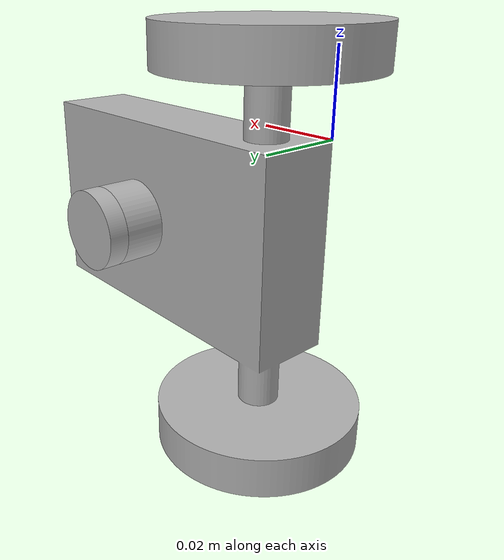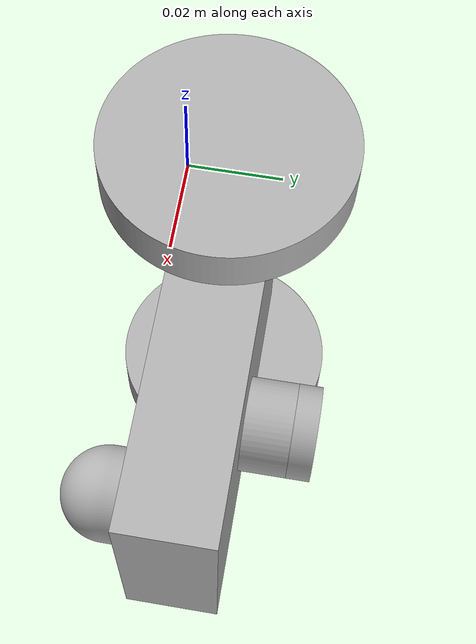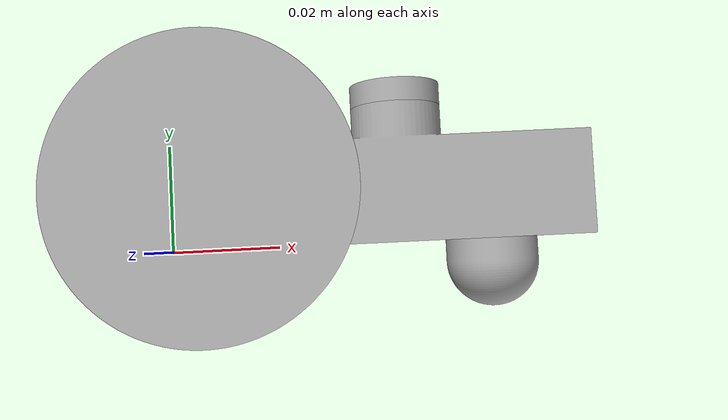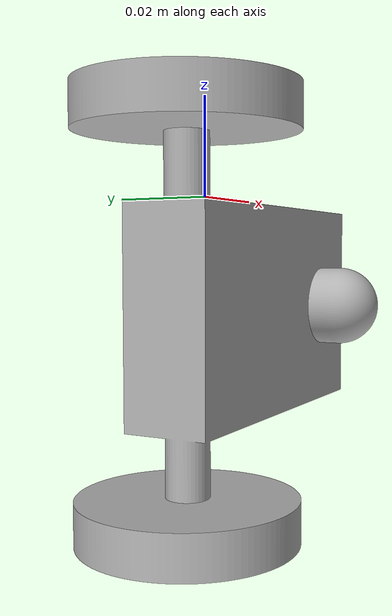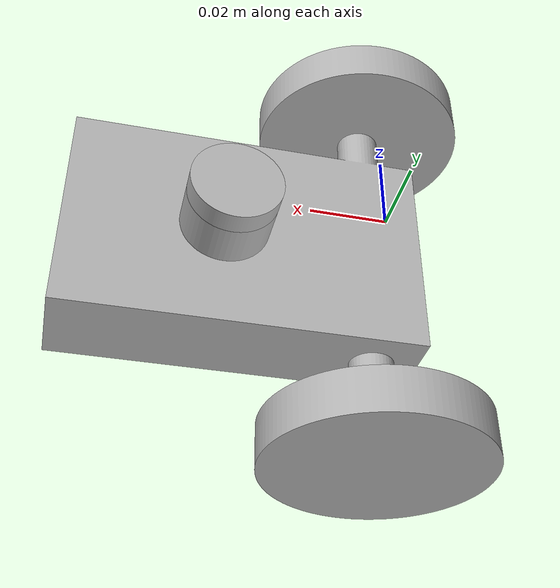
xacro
<?xml version="1.0" ?>
<robot name="WS2" xmlns:xacro="http://www.ros.org/wiki/xacro">

<xacro:include filename="$(find WS2_description)/urdf/materials.xacro" />
<xacro:include filename="$(find WS2_description)/urdf/WS2.ros2control" />
<xacro:include filename="$(find WS2_description)/urdf/WS2.gazebo" />
<link name="base_link">
  <inertial>
    <origin xyz="0.03935696731693397 0.0105511708709443 -0.025" rpy="0 0 0"/>
    <mass value="0.6711576290786943"/>
    <inertia ixx="0.000178" iyy="0.000504" izz="0.000379" ixy="-2e-06" iyz="0.0" ixz="0.0"/>
  </inertial>
  <visual>
    <origin xyz="0 0 0" rpy="0 0 0"/>
    <geometry>
      <mesh filename="file://$(find WS2_description)/meshes/base_link.stl" scale="0.001 0.001 0.001"/>
    </geometry>
    <material name="silver"/>
  </visual>
  <collision>
    <origin xyz="0 0 0" rpy="0 0 0"/>
    <geometry>
      <mesh filename="file://$(find WS2_description)/meshes/base_link.stl" scale="0.001 0.001 0.001"/>
    </geometry>
  </collision>
</link>

<link name="rueda1_1">
  <inertial>
    <origin xyz="-5.204170427930421e-18 -5.204170427930421e-18 0.0049999999999999975" rpy="0 0 0"/>
    <mass value="0.1541343895667492"/>
    <inertia ixx="2.5e-05" iyy="2.5e-05" izz="4.8e-05" ixy="-0.0" iyz="0.0" ixz="0.0"/>
  </inertial>
  <visual>
    <origin xyz="-0.01 -0.01 -0.015" rpy="0 0 0"/>
    <geometry>
      <mesh filename="file://$(find WS2_description)/meshes/rueda1_1.stl" scale="0.001 0.001 0.001"/>
    </geometry>
    <material name="silver"/>
  </visual>
  <collision>
    <origin xyz="-0.01 -0.01 -0.015" rpy="0 0 0"/>
    <geometry>
      <mesh filename="file://$(find WS2_description)/meshes/rueda1_1.stl" scale="0.001 0.001 0.001"/>
    </geometry>
  </collision>
</link>

<link name="rueda2_1">
  <inertial>
    <origin xyz="-5.204170427930421e-18 -5.204170427930421e-18 -0.0049999999999999906" rpy="0 0 0"/>
    <mass value="0.1541343895667492"/>
    <inertia ixx="2.5e-05" iyy="2.5e-05" izz="4.8e-05" ixy="-0.0" iyz="0.0" ixz="0.0"/>
  </inertial>
  <visual>
    <origin xyz="-0.01 -0.01 0.065" rpy="0 0 0"/>
    <geometry>
      <mesh filename="file://$(find WS2_description)/meshes/rueda2_1.stl" scale="0.001 0.001 0.001"/>
    </geometry>
    <material name="silver"/>
  </visual>
  <collision>
    <origin xyz="-0.01 -0.01 0.065" rpy="0 0 0"/>
    <geometry>
      <mesh filename="file://$(find WS2_description)/meshes/rueda2_1.stl" scale="0.001 0.001 0.001"/>
    </geometry>
  </collision>
</link>

<link name="castor_1">
  <inertial>
    <origin xyz="-0.015 -0.006071428571428569 0.0" rpy="0 0 0"/>
    <mass value="0.028771752719126516"/>
    <inertia ixx="1e-06" iyy="1e-06" izz="1e-06" ixy="0.0" iyz="0.0" ixz="-0.0"/>
  </inertial>
  <visual>
    <origin xyz="-0.08 -0.0 0.025" rpy="0 0 0"/>
    <geometry>
      <mesh filename="file://$(find WS2_description)/meshes/castor_1.stl" scale="0.001 0.001 0.001"/>
    </geometry>
    <material name="silver"/>
  </visual>
  <collision>
    <origin xyz="-0.08 -0.0 0.025" rpy="0 0 0"/>
    <geometry>
      <mesh filename="file://$(find WS2_description)/meshes/castor_1.stl" scale="0.001 0.001 0.001"/>
    </geometry>
  </collision>
</link>

<link name="Lidar_1">
  <inertial>
    <origin xyz="-6.938893903907228e-18 0.0025000000000000022 0.0" rpy="0 0 0"/>
    <mass value="0.012330751165339937"/>
    <inertia ixx="0.0" iyy="1e-06" izz="0.0" ixy="0.0" iyz="0.0" ixz="0.0"/>
  </inertial>
  <visual>
    <origin xyz="-0.045 -0.03 0.025" rpy="0 0 0"/>
    <geometry>
      <mesh filename="file://$(find WS2_description)/meshes/Lidar_1.stl" scale="0.001 0.001 0.001"/>
    </geometry>
    <material name="silver"/>
  </visual>
  <collision>
    <origin xyz="-0.045 -0.03 0.025" rpy="0 0 0"/>
    <geometry>
      <mesh filename="file://$(find WS2_description)/meshes/Lidar_1.stl" scale="0.001 0.001 0.001"/>
    </geometry>
  </collision>
</link>

<joint name="Revolución 1" type="continuous">
  <origin xyz="0.01 0.01 0.015" rpy="0 0 0"/>
  <parent link="base_link"/>
  <child link="rueda1_1"/>
  <axis xyz="0.0 0.0 1.0"/>
</joint>

<joint name="Revolución 2" type="continuous">
  <origin xyz="0.01 0.01 -0.065" rpy="0 0 0"/>
  <parent link="base_link"/>
  <child link="rueda2_1"/>
  <axis xyz="0.0 0.0 1.0"/>
</joint>

<joint name="Revolución 3" type="continuous">
  <origin xyz="0.08 0.0 -0.025" rpy="0 0 0"/>
  <parent link="base_link"/>
  <child link="castor_1"/>
  <axis xyz="0.0 -1.0 0.0"/>
</joint>

<joint name="Revolución 4" type="continuous">
  <origin xyz="0.045 0.03 -0.025" rpy="0 0 0"/>
  <parent link="base_link"/>
  <child link="Lidar_1"/>
  <axis xyz="0.0 1.0 0.0"/>
</joint>

</robot>

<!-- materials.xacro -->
<robot name="WS2" xmlns:xacro="http://www.ros.org/wiki/xacro" >

<material name="silver">
  <color rgba="0.700 0.700 0.700 1.000"/>
</material>

</robot>

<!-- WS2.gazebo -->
<robot name="WS2" xmlns:xacro="http://www.ros.org/wiki/xacro" >

<xacro:property name="body_color" value="Gazebo/Silver" />

<gazebo reference="base_link">
  <material>${body_color}</material>
  <mu1>0.2</mu1>
  <mu2>0.2</mu2>
  <self_collide>true</self_collide>
  <gravity>true</gravity>
</gazebo>

<gazebo reference="rueda1_1">
  <material>${body_color}</material>
  <mu1>0.2</mu1>
  <mu2>0.2</mu2>
  <self_collide>true</self_collide>
</gazebo>

<gazebo reference="rueda2_1">
  <material>${body_color}</material>
  <mu1>0.2</mu1>
  <mu2>0.2</mu2>
  <self_collide>true</self_collide>
</gazebo>

<gazebo reference="castor_1">
  <material>${body_color}</material>
  <mu1>0.2</mu1>
  <mu2>0.2</mu2>
  <self_collide>true</self_collide>
</gazebo>

<gazebo reference="Lidar_1">
  <material>${body_color}</material>
  <mu1>0.2</mu1>
  <mu2>0.2</mu2>
  <self_collide>true</self_collide>
</gazebo>

</robot>
